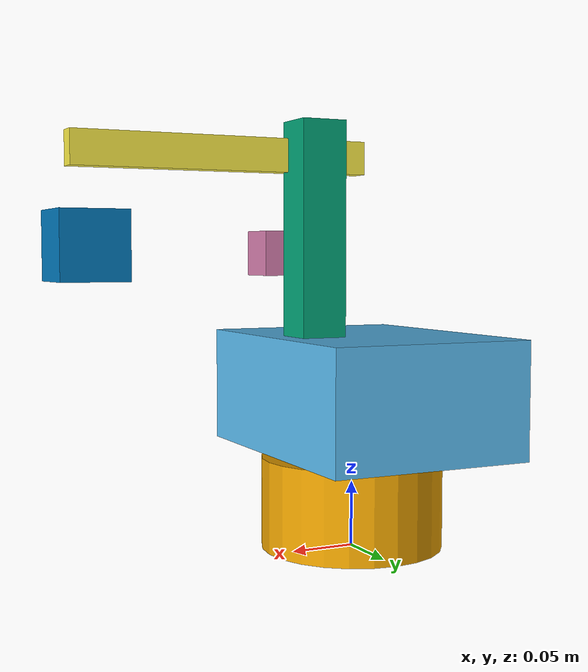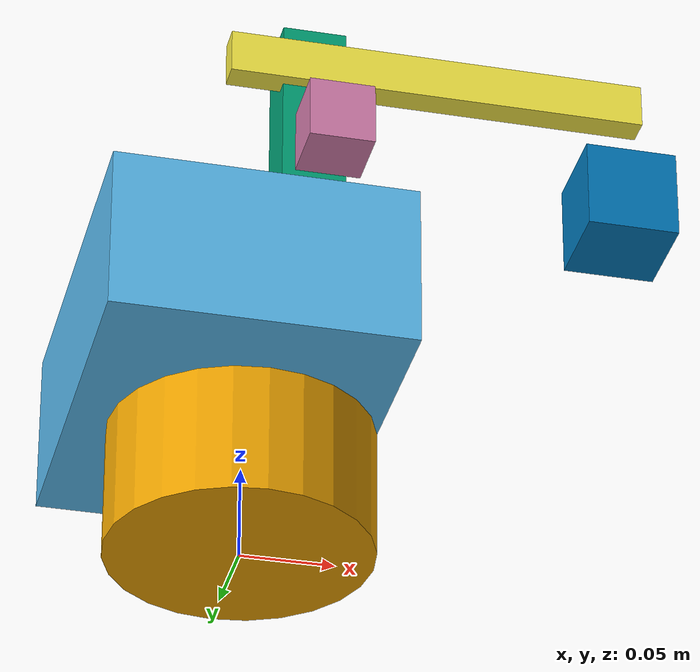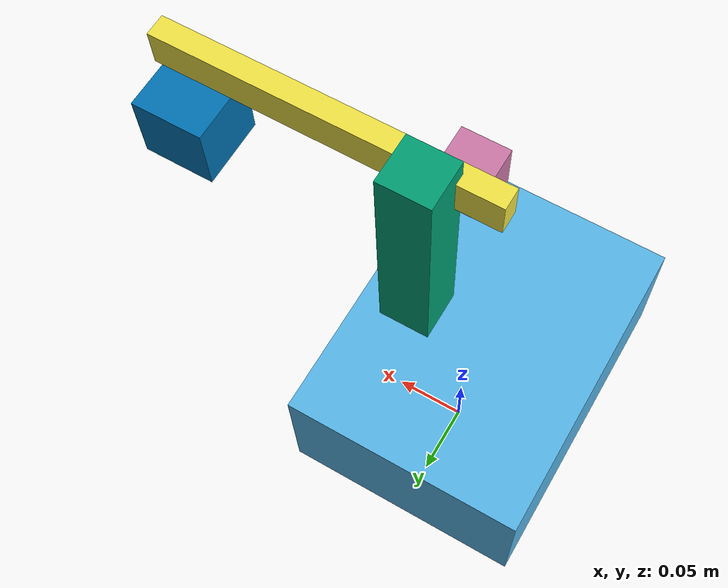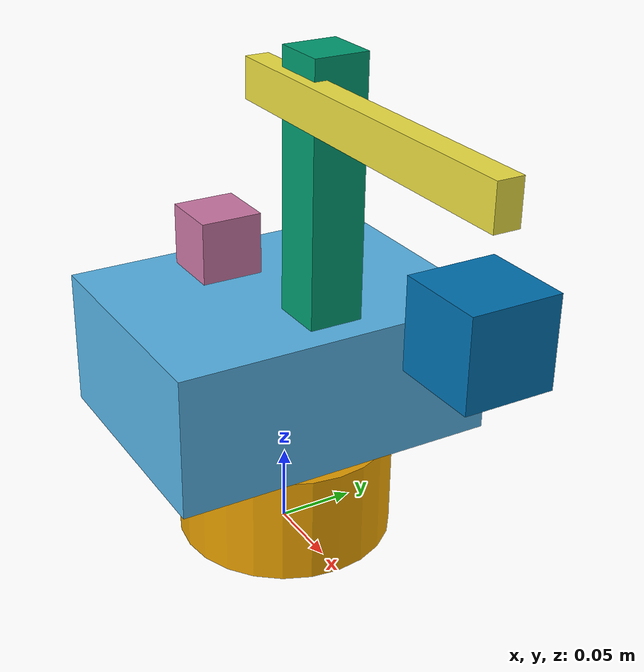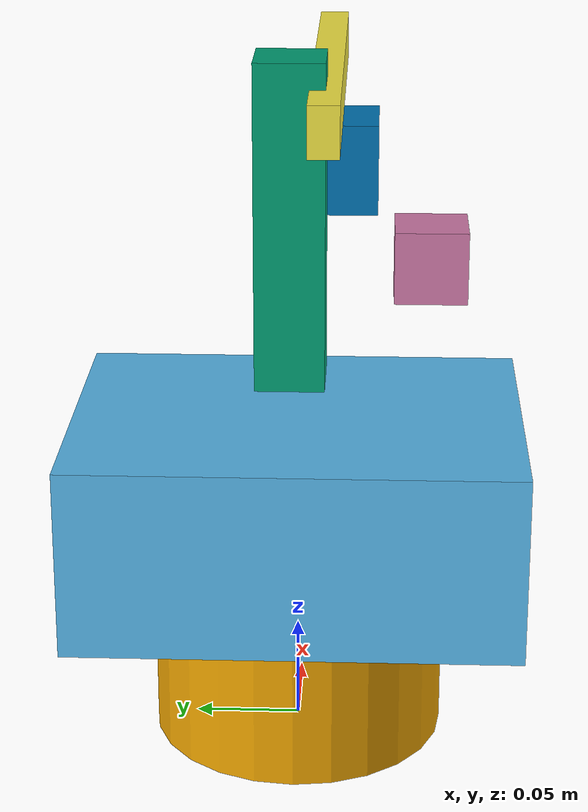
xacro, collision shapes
<?xml version="1.0"?>
<robot name="g_arm">

  <!-- Definition of the base link -->
  <link name="base_link">
    <visual>
      <origin rpy="0 0 0" xyz="0 0 0" />
      <geometry>
        <mesh filename="package://g_arm_description/meshes/base.dae"/>
      </geometry>
    </visual>
    <collision>
      <origin rpy="0 0 0" xyz="0 0 0.035" />
      <geometry>
            <cylinder radius="0.07" length="0.07"/>
      </geometry>
      <material name="blue">
        <color rgba="0 0 1 1"/>
      </material>
    </collision>
  </link>

  <!-- Definition of the motors base link -->
  <link name="motors_link">
    <visual>
      <origin rpy="0 0 0" xyz="0 0 0" />
      <geometry>
        <mesh filename="package://g_arm_description/meshes/motors.dae"/>
      </geometry>
    </visual>
    <collision>
      <origin rpy="0 0 0" xyz="-0.00975 0 0.0445" />
      <geometry>
            <box size="0.159 0.210 0.089"/> r
      </geometry>
      <material name="blue">
        <color rgba="0 0 1 1"/>
      </material>
    </collision>
  </link>

  <!-- Definition of the arm link 1 -->
  <link name="link1">
    <visual>
      <origin rpy="0 0 0" xyz="0 0 0" />
      <geometry>
        <mesh filename="package://g_arm_description/meshes/link1.dae"/>
      </geometry>
    </visual>
    <collision>
      <origin rpy="0 0 0" xyz="0.0 0.0975 0.028" />
      <geometry>
            <box size="0.035 0.195 0.034"/> r
      </geometry>
      <material name="blue">
        <color rgba="0 0 1 1"/>
      </material>
    </collision>
  </link>

  <!-- Definition of the arm link 2 -->
  <link name="link2">
    <visual>
      <origin rpy="0 0 0" xyz="0 0 0" />
      <geometry>
        <mesh filename="package://g_arm_description/meshes/link2.dae"/>
      </geometry>
    </visual>
    <collision>
      <origin rpy="0 0 0" xyz="0.0 -0.0675 0.0085" />
      <geometry>
            <box size="0.025 0.230 0.015"/> r
      </geometry>
      <material name="blue">
        <color rgba="0 0 1 1"/>
      </material>
    </collision>
  </link>

  <!-- Definition of the arm end effector -->
  <link name="end_effector">
    <visual>
      <origin rpy="0 0 0" xyz="0 0 0" />
      <geometry>
        <mesh filename="package://g_arm_description/meshes/end.dae"/>
      </geometry>
    </visual>
    <collision>
      <origin rpy="0 0 0" xyz="0.0 -0.0675 0.0085" />
      <geometry>
            <box size="0.05 0.05 0.05"/> r
      </geometry>
      <material name="blue">
        <color rgba="0 0 1 1"/>
      </material>
    </collision>
  </link>

    <!-- Definition of the invisible link of the end effector -->
  <link name="invisible_end">

  </link>

  <joint name="joint1" type="revolute">
    <origin
      xyz="0 0 0.075"
      rpy="0 0 0" />
    <parent
      link="base_link" />
    <child
      link="motors_link" />
    <axis
      xyz="0 0 1" />
    <limit
      lower="-1.5707"
      upper="1.5707"
      effort="200.0"
      velocity="200.0" />
  </joint>

  <joint name="joint2" type="revolute">
    <origin
      xyz="0.035 0.0331 0.054"
      rpy="1.5708 0 0" />
    <parent
      link="motors_link" />
    <child
      link="link1" />
    <axis
      xyz="0 0 1" />
    <limit
      lower="-1.5707"
      upper="1.5707"
      effort="200.0"
      velocity="200.0" />
  </joint>

  <joint name="joint3" type="revolute">
    <origin
      xyz="0.0 0.17 0.0362"
      rpy="0 0 1.5708" />
    <parent
      link="link1" />
    <child
      link="link2" />
    <axis
      xyz="0 0 1" />
    <limit
      lower="-1.5707"
      upper="1.5707"
      effort="200.0"
      velocity="200.0" />
  </joint>

  <joint name="passive_joint4_mimic1" type="revolute">
    <origin
      xyz="0.0 -0.17 0.0"
      rpy="0 0 -1.5708" />
    <parent
      link="link2" />
    <child
      link="invisible_end" />
    <axis
      xyz="0 0 1" />
    <limit
      lower="-1.5707"
      upper="1.5707"
      effort="200.0"
      velocity="200.0" />
    <mimic
      joint="joint2"
      multiplier="-1"
    />
  </joint>

  <joint name="passive_joint4_mimic2" type="revolute">
    <origin
      xyz="0.0 0.0 0.0"
      rpy="0 0 0" />
    <parent
      link="invisible_end" />
    <child
      link="end_effector" />
    <axis
      xyz="0 0 1" />
    <limit
      lower="-1.5707"
      upper="1.5707"
      effort="200.0"
      velocity="200.0" />
    <mimic
      joint="joint3"
      multiplier="-1"
    />
  </joint>

  <!-- Here starts the definition of only for visual appearance and collisions links and joints -->
  <link name="visual_link_j3_lever">
    <visual>
      <origin rpy="0 0 0" xyz="0 0 0" />
      <geometry>
        <mesh filename="package://g_arm_description/meshes/visual_link_j3_lever.dae"/>
      </geometry>
    </visual>
    <collision>
      <origin rpy="0 0 0" xyz="0.0 0.0975 0.028" />
      <geometry>
            <box size="0.035 0.035 0.035"/> r
      </geometry>
      <material name="blue">
        <color rgba="0 0 1 1"/>
      </material>
    </collision>
  </link>

  <joint name="visual_joint_j3_lever" type="revolute">
    <origin
      xyz="0.035 -0.0341 0.054"
      rpy="1.5708 0 0" />
    <parent
      link="motors_link" />
    <child
      link="visual_link_j3_lever" />
    <axis
      xyz="0 0 1" />
    <limit
      lower="-1.5707"
      upper="1.5707"
      effort="200.0"
      velocity="200.0" />
    <mimic
      joint="joint3"
      multiplier="1"/>
  </joint>

  <link name="invisible_visual_link_j3_lever">

  </link>

  <joint name="invert_visual_joint_j3_lever" type="revolute">
    <origin
      xyz="0.0 0.0 0.0"
      rpy="0 0 0" />
    <parent
      link="visual_link_j3_lever" />
    <child
      link="invisible_visual_link_j3_lever" />
    <axis
      xyz="0 0 1" />
    <limit
      lower="-1.5707"
      upper="1.5707"
      effort="200.0"
      velocity="200.0" />
    <mimic
      joint="joint3"
      multiplier="-1"/>
  </joint>

  <link name="visual_link_j3_rod">
    <visual>
      <origin rpy="0 0 0" xyz="-0.035 0 0" />
      <geometry>
        <mesh filename="package://g_arm_description/meshes/visual_link_j3_rod.dae"/>
      </geometry>
    </visual>
    <collision>
      <origin rpy="0 0 0" xyz="0.0 0.0975 0.028" />
      <geometry>
            <box size="0.035 0.035 0.035"/> r
      </geometry>
      <material name="blue">
        <color rgba="0 0 1 1"/>
      </material>
    </collision>
  </link>

  <joint name="visual_joint_j3_rod" type="revolute">
    <origin
      xyz="0.0 0.0 0.0"
      rpy="0 0 0" />
    <parent
      link="invisible_visual_link_j3_lever" />
    <child
      link="visual_link_j3_rod" />
    <axis
      xyz="0 0 1" />
    <limit
      lower="-1.5707"
      upper="1.5707"
      effort="200.0"
      velocity="200.0" />
    <mimic
      joint="joint2"
      multiplier="1"/>
  </joint>

</robot>
